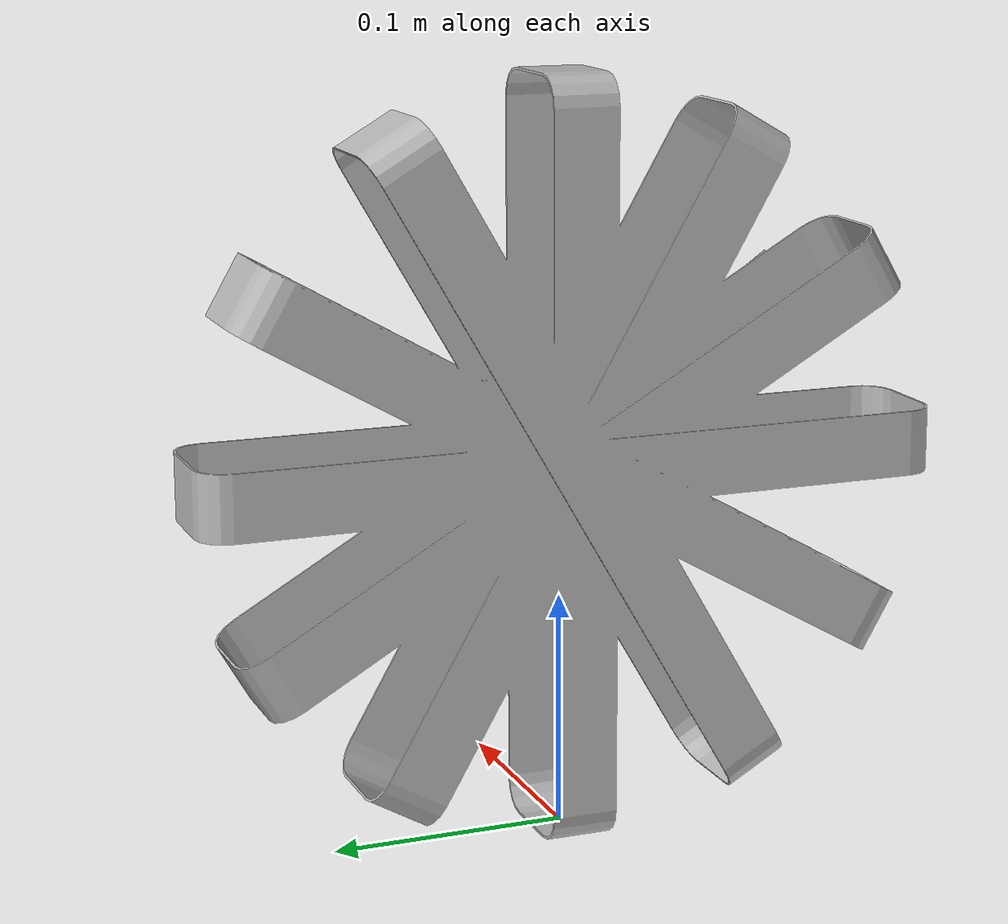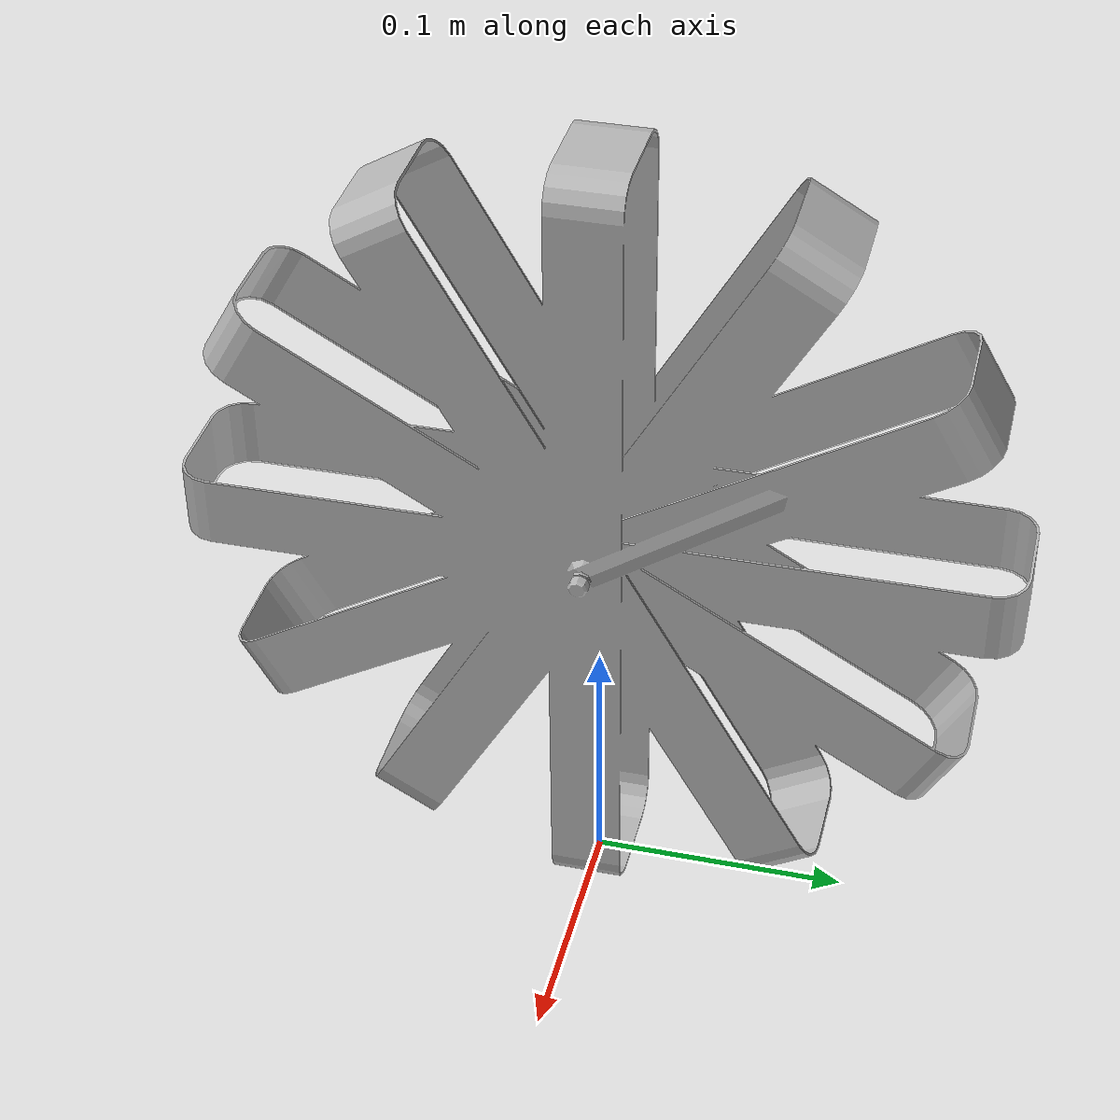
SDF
<?xml version='1.0'?>
<sdf version='1.4'>
  <model name='s__2365'>
    <pose>0 0 0 0 0 0</pose>
    <static>true</static>
    <link name='link'>
      <collision name='collision'>
        <pose>0 0 0 0 0 0</pose>
        <geometry>
          <box>
            <size>0.07 0.32 2</size>
          </box>
        </geometry>
      </collision>
      <visual name='visual'>
        <pose>0 0 0 0 0 0</pose>
        <geometry>
          <mesh><uri>model://s__2365/s__2365.dae</uri></mesh>
        </geometry>
      </visual>
    </link>
  </model>
</sdf>
